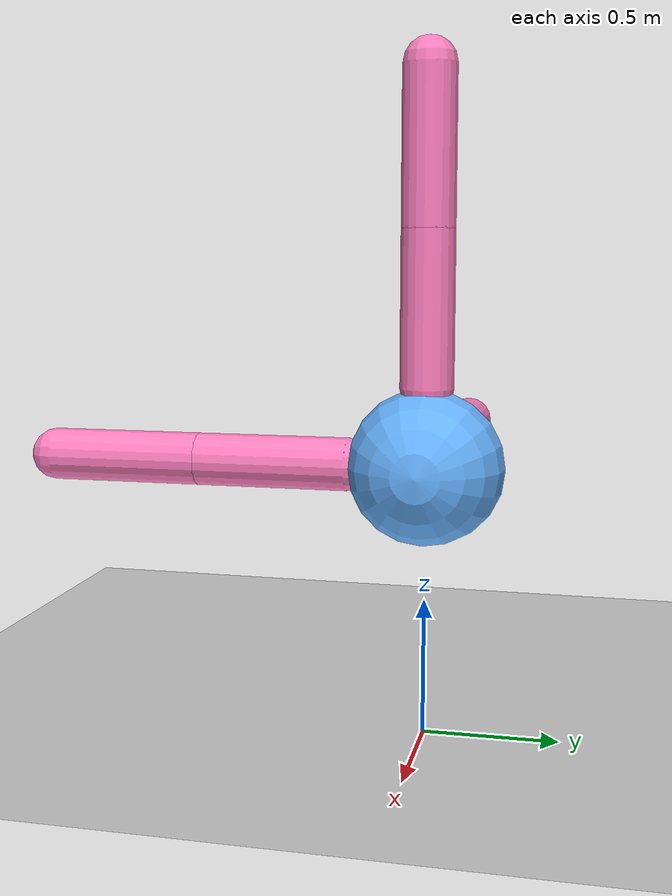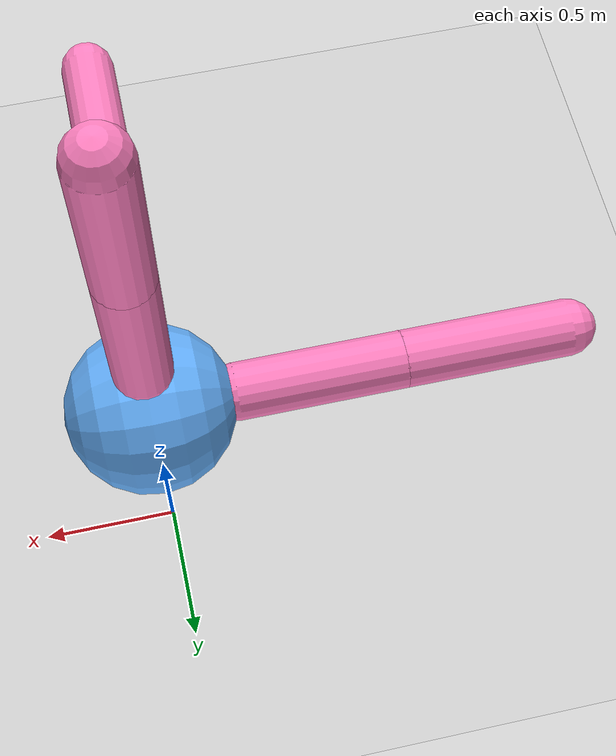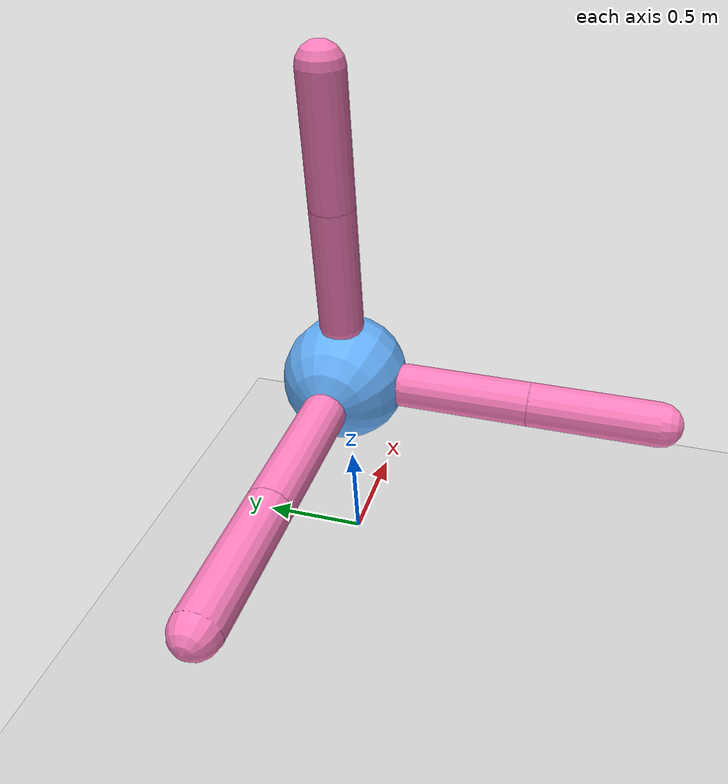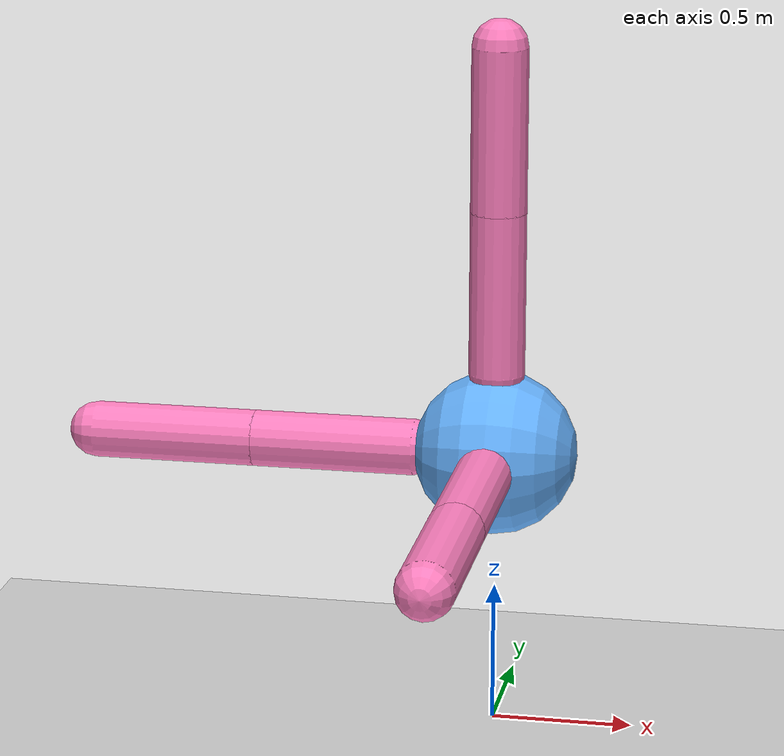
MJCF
<mujoco><option gravity="0 0 -30" /><worldbody><light diffuse="0.5 0.5 0.6" pos="0 2 3" dir="0 -0.5 -1" /><geom type="plane" size="5 5 0.1" rgba="0.8 0.8 0.8 1" /><body name="mainbody" pos="0 0 1" euler="0 90 0"><joint type="free" /><geom type="sphere" size="0.29 0.29 0.29" rgba="0.4 0.7 1.5 1.0" /><body name="leg0" pos="0 -0.58 0" euler="-90 0 0"><joint name="leg0_joint" type="hinge" pos="0 0 0.29" axis="0 90 0" range="-55 55" /><geom type="capsule" size="0.1 0.29 0.29" rgba="1.4 0.5 0.75 1.0" /><body name="leg0_seg0" pos="0 0 -0.58" euler="0 0 0"><joint name="leg0_seg0_joint" type="hinge" pos="0 0 0.29" axis="0 90 0" range="-55 55" /><geom type="capsule" size="0.1 0.29 0.29" rgba="1.4 0.5 0.75 1.0" /></body></body><body name="leg1" pos="0 0 -0.58" euler="0 0 0"><joint name="leg1_joint" type="hinge" pos="0 0 0.29" axis="0 90 0" range="-54 54" /><geom type="capsule" size="0.1 0.29 0.29" rgba="1.4 0.5 0.75 1.0" /><body name="leg1_seg0" pos="0 0 -0.58" euler="0 0 0"><joint name="leg1_seg0_joint" type="hinge" pos="0 0 0.29" axis="0 90 0" range="-54 54" /><geom type="capsule" size="0.1 0.29 0.29" rgba="1.4 0.5 0.75 1.0" /></body></body><body name="leg2" pos="-0.58 0 0" euler="0 90 0"><joint name="leg2_joint" type="hinge" pos="0 0 0.29" axis="0 90 0" range="-51 51" /><geom type="capsule" size="0.1 0.29 0.29" rgba="1.4 0.5 0.75 1.0" /><body name="leg2_seg0" pos="0 0 -0.58" euler="0 0 0"><joint name="leg2_seg0_joint" type="hinge" pos="0 0 0.29" axis="0 90 0" range="-51 51" /><geom type="capsule" size="0.1 0.29 0.29" rgba="1.4 0.5 0.75 1.0" /></body></body></body></worldbody><actuator><motor gear="100" joint="leg0_joint" /><motor gear="100" joint="leg1_joint" /><motor gear="100" joint="leg2_joint" /></actuator></mujoco>
